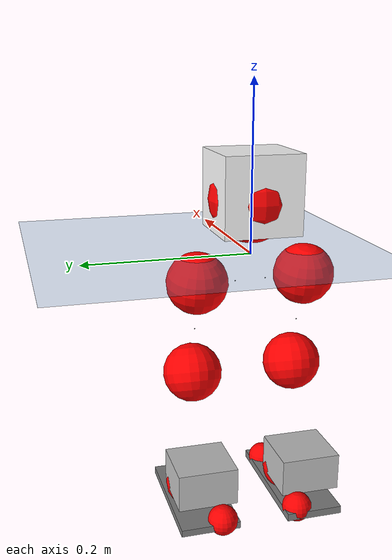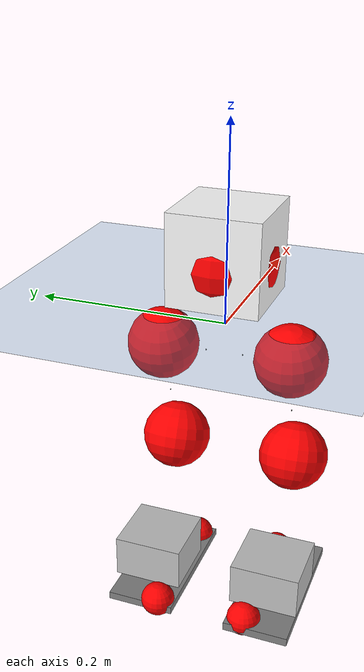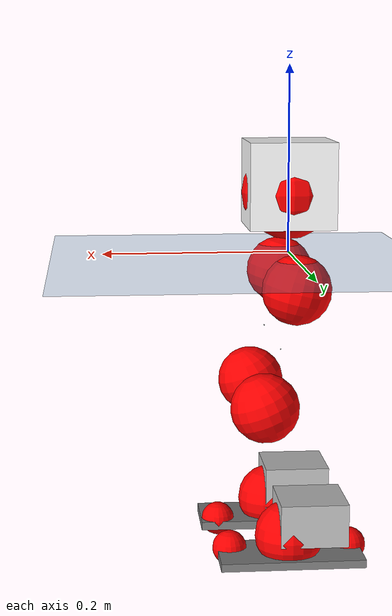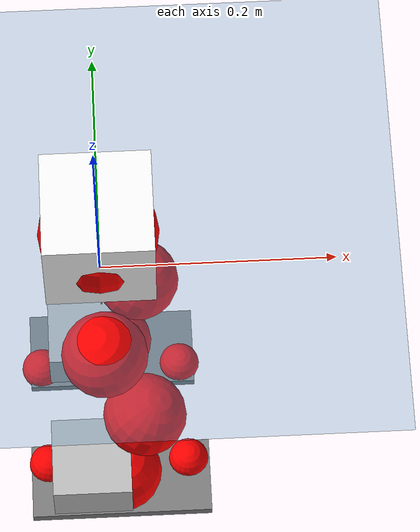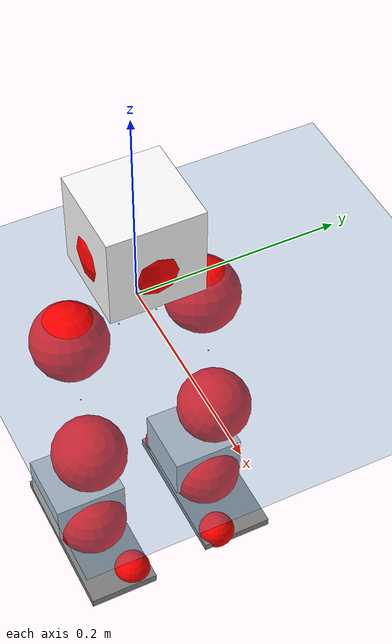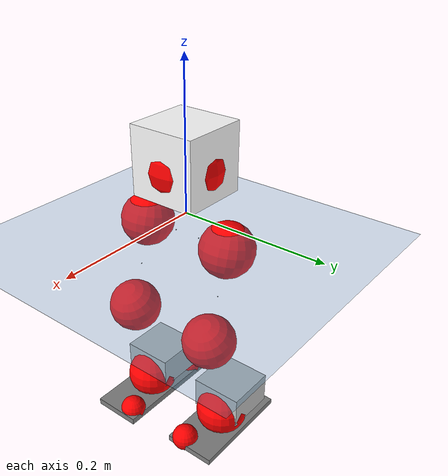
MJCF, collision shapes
<mujoco model="pi_12dof_release_v1">
  <compiler angle="radian" assetdir="assets" balanceinertia="true" inertiafromgeom="false"/>

  <option timestep="0.005" density="1.2" viscosity="2e-05"/>

  <size nkey="1"/>

  <visual>
    <quality shadowsize="8192"/>
    <map shadowclip="0.5"/>
  </visual>

  <default>
    <default class="/">
      <joint armature="0.01" damping="0.01" frictionloss="0.01"/>
      <geom contype="0" conaffinity="0" group="1" solref="-1000 -80"/>
      <site size="0.01 0.005 0.005" group="5"/>
      <general forcelimited="true" biastype="affine" gainprm="20" biasprm="0 -20 -0.5"/>
      <default class="foot">
        <geom size="0.0845 0.036 0.005" type="box" condim="6" group="4" priority="1" friction="0.9 0.2 0.2" solimp="0.015 1 0.005"/>
      </default>
      <default class="reward_collision_sphere">
        <geom group="5" rgba="1 0 0 1"/>
      </default>
    </default>
  </default>

  <asset>
    <texture type="skybox" colorspace="auto" name="//unnamed_texture_0" builtin="gradient" rgb1="0.95 0.95 0.95" rgb2="0.95 0.95 0.95" width="100" height="600"/>
    <texture type="2d" colorspace="auto" name="texplane" builtin="checker" rgb1="0.345 0.575 0.748" rgb2="0.345 0.575 0.748" markrgb="1 1 1" width="512" height="512"/>
    <material name="MatPlane" class="/" texture="texplane" texuniform="true" texrepeat="2 2" specular="0.9"/>
    <mesh name="baselink_1" class="/" file="baselink_1.STL"/>
    <mesh name="r_hip_pitch_link" class="/" file="r_hip_pitch_link.STL"/>
    <mesh name="r_hip_roll_link" class="/" file="r_hip_roll_link.STL"/>
    <mesh name="r_thigh_link" class="/" file="r_thigh_link.STL"/>
    <mesh name="r_calf_link" class="/" file="r_calf_link.STL"/>
    <mesh name="r_ankle_pitch_link" class="/" file="r_ankle_pitch_link.STL"/>
    <mesh name="r_ankle_roll_link" class="/" file="r_ankle_roll_link.STL"/>
    <mesh name="l_hip_pitch_link" class="/" file="l_hip_pitch_link.STL"/>
    <mesh name="l_hip_roll_link" class="/" file="l_hip_roll_link.STL"/>
    <mesh name="l_thigh_link" class="/" file="l_thigh_link.STL"/>
    <mesh name="l_calf_link" class="/" file="l_calf_link.STL"/>
    <mesh name="l_ankle_pitch_link" class="/" file="l_ankle_pitch_link.STL"/>
    <mesh name="l_ankle_roll_link" class="/" file="l_ankle_roll_link.STL"/>
  </asset>

  <worldbody>
    <geom name="floor" class="/" size="100 100 0.125" type="plane" group="0" material="MatPlane"/>
    <light name="toplight_shadow" class="/" pos="0 0 5" dir="0.0990148 0.0990148 -0.990148" type="directional" ambient="0.04 0.04 0.04" diffuse="0.55 0.55 0.55" specular="0.12 0.12 0.12"/>
    <light name="toplight_fill" class="/" pos="0 0 5" dir="0.0990148 0.0990148 -0.990148" type="directional" castshadow="false" ambient="0.04 0.04 0.04" diffuse="0.3 0.3 0.3" specular="0.08 0.08 0.08"/>
    <body name="trunk" pos="0.000510488 -2.01027e-05 -0.000156554" quat="1 7.12702e-05 -0.000187713 -0.000179432">
      <inertial pos="0.00146108 -0.00234776 0.0366025" quat="0.692512 0.0112622 0.0118236 0.721221" mass="1.66045" diaginertia="0.00797667 0.0044679 0.00295321"/>
      <joint name="//unnamed_joint_0" type="free"/>
      <geom name="//unnamed_geom_1" class="/" type="mesh" density="0" rgba="1 1 1 1" mesh="baselink_1"/>
      <geom name="//unnamed_geom_2" class="/" size="0.0459404 0.0459404 0.0459404" pos="0 0 0.0745345" type="box" rgba="1 1 1 1"/>
      <geom name="//unnamed_geom_3" class="reward_collision_sphere" size="0.0505344" pos="0 0 0.0652177"/>
      <site name="imu" class="/" pos="-0.0105538 -0.00215378 0.0069715" size="0.00918808"/>
      <camera name="track" class="/" pos="0 -1.73166 0" quat="0.707107 0.707107 0 0" mode="trackcom"/>
      <camera name="ego_camera" class="/" pos="0.0719182 0 0.167703" quat="-0.5 -0.5 0.5 0.5"/>
      <body name="r_hip_pitch_link" pos="-0.000647859 -0.0189544 -0.0304776" quat="0.992209 -0.000110221 -0.124585 4.08324e-05">
        <inertial pos="0.00256641 -0.0479092 -1.22901e-05" quat="-0.019049 0.706559 -0.0263693 0.706906" mass="0.281456" diaginertia="8.61504e-05 4.79051e-05 5.77052e-05"/>
        <joint name="r_hip_pitch_joint" class="/" pos="0 0 0" axis="-0.000533678 -0.999979 -0.00653475" stiffness="0.00664504" range="-1.74626 1.21414" armature="0.00957969" damping="0.00021572" frictionloss="0.00963008"/>
        <geom name="//unnamed_geom_4" class="/" type="mesh" density="0" rgba="0.75294 0.75294 0.75294 1" mesh="r_hip_pitch_link"/>
        <geom name="//unnamed_geom_5" class="/" size="0.000459404 0.000459404 0.000459404" type="box" rgba="0.75294 0.75294 0.75294 1"/>
        <body name="r_hip_roll_link" pos="0.00150301 -0.0489501 0.00127123" quat="1 4.4955e-05 -6.75321e-05 -2.43719e-07">
          <inertial pos="-0.00212 -9.42107e-05 -0.0559315" quat="0.704648 -0.0785081 -0.0854317 0.700007" mass="0.301311" diaginertia="0.000266543 0.00013578 9.0366e-05"/>
          <joint name="r_hip_roll_joint" class="/" pos="0 0 0" axis="-0.999949 0.00632285 0.00781374" stiffness="0.000595536" range="-0.150528 0.478778" armature="0.00968636" damping="0.00651524" frictionloss="0.00937981"/>
          <geom name="//unnamed_geom_6" class="/" type="mesh" density="0" rgba="0.75294 0.75294 0.75294 1" mesh="r_hip_roll_link"/>
          <geom name="//unnamed_geom_7" class="/" size="0.000459404 0.000459404 0.000459404" type="box" rgba="0.75294 0.75294 0.75294 1"/>
          <geom name="//unnamed_geom_8" class="reward_collision_sphere" size="0.0367523"/>
          <body name="r_thigh_link" pos="0.000356816 -0.000127043 -0.066144" quat="1 0.00034194 -0.000114682 -0.000354327">
            <inertial pos="0.000369723 0.000642728 -0.0437686" quat="0.735795 0.677202 0.00163581 -0.000130631" mass="0.0881774" diaginertia="0.000102039 4.59268e-05 4.11096e-05"/>
            <joint name="r_thigh_joint" class="/" pos="0 0 0" axis="0.000781438 -0.00204975 -0.999998" range="-0.321128 0.58008" armature="0.00904162" damping="0.00273954" frictionloss="0.00930765"/>
            <geom name="//unnamed_geom_9" class="/" type="mesh" density="0" rgba="0.75294 0.75294 0.75294 1" mesh="r_thigh_link"/>
            <geom name="//unnamed_geom_10" class="/" size="0.000459404 0.000459404 0.000459404" type="box" rgba="0.75294 0.75294 0.75294 1"/>
            <body name="r_calf_link" pos="-0.00064633 -0.00177209 -0.0644132" quat="0.947658 -3.33065e-05 0.319287 -4.02214e-05">
              <inertial pos="0.000911207 -0.000747276 -0.0649389" quat="0.999982 -0.00403598 0.0011677 0.00420612" mass="0.632828" diaginertia="0.00287957 0.00168537 0.000121903"/>
              <joint name="r_calf_joint" class="/" pos="0 0 0" axis="-0.00158217 -0.999996 -0.00221444" stiffness="0.0003034" range="-1.66134 0.6352" armature="0.00919003" damping="0.00755487" frictionloss="0.00957683"/>
              <geom name="//unnamed_geom_11" class="/" type="mesh" density="0" rgba="0.75294 0.75294 0.75294 1" mesh="r_calf_link"/>
              <geom name="//unnamed_geom_12" class="/" size="0.000459404 0.000459404 0.000459404" type="box" rgba="0.75294 0.75294 0.75294 1"/>
              <geom name="//unnamed_geom_13" class="reward_collision_sphere" size="0.0367523"/>
              <body name="r_ankle_pitch_link" pos="0.000732859 0.0028453 -0.130139" quat="0.980064 2.44557e-06 -0.198682 -2.04372e-05">
                <inertial pos="0.00461683 0.00338571 -0.000858538" quat="-0.00162521 0.703586 -0.00255855 0.710603" mass="0.132378" diaginertia="0.00024917 0.000106829 8.25083e-05"/>
                <joint name="r_ankle_pitch_joint" class="/" pos="0 0 0" axis="-0.00511809 -0.999986 -0.00136875" range="-1.28714 0.499462" armature="0.00918569" damping="0" frictionloss="0.0091939"/>
                <geom name="//unnamed_geom_14" class="/" type="mesh" density="0" rgba="0.75294 0.75294 0.75294 1" mesh="r_ankle_pitch_link"/>
                <geom name="//unnamed_geom_15" class="/" size="0.0358335 0.0367523 0.0229702" type="box" rgba="0.75294 0.75294 0.75294 1"/>
                <body name="r_ankle_roll_link" pos="0.0748755 0.00162183 -0.000481934" quat="1 1.13423e-05 -2.46239e-05 3.83763e-05">
                  <inertial pos="-0.0232128 0.000335498 -0.0119372" quat="0.561033 0.431822 0.432394 0.558397" mass="0.401398" diaginertia="0.000895901 0.000497485 0.000199711"/>
                  <joint name="r_ankle_roll_joint" class="/" pos="0 0 0" axis="-0.999996 0.000957117 0.00277653" range="-0.152592 0.130213" armature="0.00862909" damping="0" frictionloss="0.00975643"/>
                  <geom name="//unnamed_geom_16" class="/" type="mesh" density="0" rgba="0.75294 0.75294 0.75294 1" mesh="r_ankle_roll_link"/>
                  <geom name="//unnamed_geom_17" class="/" type="mesh" rgba="0.75294 0.75294 0.75294 1" mesh="r_ankle_roll_link"/>
                  <geom name="right_foot" class="foot" size="0.0825706 0.0349589 0.00466123" pos="-0.0489044 0 -0.040994"/>
                  <geom name="//unnamed_geom_19" class="reward_collision_sphere" size="0.0367523" pos="-0.0479455 0 -0.0186336"/>
                  <geom name="//unnamed_geom_20" class="reward_collision_sphere" size="0.0183762" pos="0.0143836 0.0173166 -0.0372673"/>
                  <geom name="//unnamed_geom_21" class="reward_collision_sphere" size="0.0183762" pos="-0.115069 0.0173166 -0.0372673"/>
                  <site name="right_foot" class="foot" pos="-0.0489044 0 -0.040994" size="0.00918808"/>
                </body>
              </body>
            </body>
          </body>
        </body>
      </body>
      <body name="l_hip_pitch_link" pos="-0.0017822 0.0189822 -0.0305085" quat="0.992221 5.34774e-05 -0.124486 0.000104055">
        <inertial pos="-9.25582e-05 0.0479348 -0.000190257" quat="-0.037188 0.706219 0.0289892 0.706421" mass="0.299716" diaginertia="0.000103759 5.16447e-05 6.84572e-05"/>
        <joint name="l_hip_pitch_joint" class="/" pos="0 0 0" axis="0.000451247 1 -0.000501013" stiffness="0.00245187" range="-1.2761 1.74926" armature="0.0100632" damping="0.00115494" frictionloss="0.00914433"/>
        <geom name="//unnamed_geom_22" class="/" type="mesh" density="0" rgba="0.75294 0.75294 0.75294 1" mesh="l_hip_pitch_link"/>
        <geom name="//unnamed_geom_23" class="/" size="0.000459404 0.000459404 0.000459404" type="box" rgba="0.75294 0.75294 0.75294 1"/>
        <body name="l_hip_roll_link" pos="0.000851916 0.046288 -7.85148e-05" quat="1 -5.12505e-05 2.82876e-05 0.000155254">
          <inertial pos="-0.00105256 0.000768722 -0.0570491" quat="0.699182 -0.0730751 -0.0786352 0.706839" mass="0.301148" diaginertia="0.000270006 0.000135533 8.91973e-05"/>
          <joint name="l_hip_roll_joint" class="/" pos="0 0 0" axis="-0.999934 -0.0105191 -0.00461623" range="-0.459084 0.110728" armature="0.00930819" damping="0.0106177" frictionloss="0.0085478"/>
          <geom name="//unnamed_geom_24" class="/" type="mesh" density="0" rgba="0.75294 0.75294 0.75294 1" mesh="l_hip_roll_link"/>
          <geom name="//unnamed_geom_25" class="/" size="0.000459404 0.000459404 0.000459404" type="box" rgba="0.75294 0.75294 0.75294 1"/>
          <geom name="//unnamed_geom_26" class="reward_collision_sphere" size="0.0367523"/>
          <body name="l_thigh_link" pos="0.000478083 -0.00115324 -0.0644716" quat="1 9.90185e-05 0.000206462 -0.000460085">
            <inertial pos="0.000531534 -0.00125558 -0.0449694" quat="0.68153 0.731748 0.00648088 0.00430099" mass="0.0875224" diaginertia="0.000101843 4.64055e-05 3.96151e-05"/>
            <joint name="l_thigh_joint" class="/" pos="0 0 0" axis="-0.00593044 0.00098762 -0.999982" range="-0.594086 0.289238" armature="0.0087978" damping="0" frictionloss="0.00908432"/>
            <geom name="//unnamed_geom_27" class="/" type="mesh" density="0" rgba="0.75294 0.75294 0.75294 1" mesh="l_thigh_link"/>
            <geom name="//unnamed_geom_28" class="/" size="0.000459404 0.000459404 0.000459404" type="box" rgba="0.75294 0.75294 0.75294 1"/>
            <body name="l_calf_link" pos="-0.000347162 -0.00114624 -0.0655473" quat="0.947701 0.000275825 0.31916 0.000268194">
              <inertial pos="-0.00143289 0.00305511 -0.0644879" quat="0.999971 0.00343109 0.00279816 0.00614919" mass="0.637602" diaginertia="0.00288561 0.001719 0.000120745"/>
              <joint name="l_calf_joint" class="/" pos="0 0 0" axis="-0.00303231 0.999994 0.0016631" stiffness="0.000958939" range="-0.669346 1.6069" armature="0.00859573" damping="0.00592347" frictionloss="0.00852341"/>
              <geom name="//unnamed_geom_29" class="/" type="mesh" density="0" rgba="0.75294 0.75294 0.75294 1" mesh="l_calf_link"/>
              <geom name="//unnamed_geom_30" class="/" size="0.000459404 0.000459404 0.000459404" type="box" rgba="0.75294 0.75294 0.75294 1"/>
              <geom name="//unnamed_geom_31" class="reward_collision_sphere" size="0.0367523"/>
              <body name="l_ankle_pitch_link" pos="0.00140802 0.00205504 -0.128845" quat="0.98007 -0.000118622 -0.198655 4.36097e-06">
                <inertial pos="0.0050849 -0.000242697 0.000203336" quat="-0.00225283 0.707151 0.00208472 0.707056" mass="0.129347" diaginertia="0.000238868 0.000104739 8.15229e-05"/>
                <joint name="l_ankle_pitch_joint" class="/" pos="0 0 0" axis="-0.00169496 0.999997 -0.00185927" stiffness="0.00036555" range="-0.499787 1.29589" armature="0.00921622" damping="0" frictionloss="0.0102502"/>
                <geom name="//unnamed_geom_32" class="/" type="mesh" density="0" rgba="0.75294 0.75294 0.75294 1" mesh="l_ankle_pitch_link"/>
                <geom name="//unnamed_geom_33" class="/" size="0.0358335 0.0367523 0.0229702" type="box" rgba="0.75294 0.75294 0.75294 1"/>
                <body name="l_ankle_roll_link" pos="0.0707715 0.00177089 -0.000447881" quat="1 2.48588e-05 0.000157969 0.0003957">
                  <inertial pos="-0.022484 -0.000264285 -0.013583" quat="0.561207 0.433241 0.435667 0.554566" mass="0.407198" diaginertia="0.00092927 0.000510907 0.000199795"/>
                  <joint name="l_ankle_roll_joint" class="/" pos="0 0 0" axis="-0.999996 -0.00159502 -0.00227341" range="-0.153953 0.154133" armature="0.00959272" damping="0.00962289" frictionloss="0.008295"/>
                  <geom name="//unnamed_geom_34" class="/" type="mesh" density="0" rgba="0.75294 0.75294 0.75294 1" mesh="l_ankle_roll_link"/>
                  <geom name="//unnamed_geom_35" class="/" type="mesh" rgba="0.75294 0.75294 0.75294 1" mesh="l_ankle_roll_link"/>
                  <geom name="left_foot" class="foot" size="0.0765292 0.0364838 0.00423417" pos="-0.0489044 0 -0.040994"/>
                  <geom name="//unnamed_geom_37" class="reward_collision_sphere" size="0.0367523" pos="-0.0479455 0 -0.0186336"/>
                  <geom name="//unnamed_geom_38" class="reward_collision_sphere" size="0.0183762" pos="0.0143836 -0.0173166 -0.0372673"/>
                  <geom name="//unnamed_geom_39" class="reward_collision_sphere" size="0.0183762" pos="-0.115069 -0.0173166 -0.0372673"/>
                  <site name="left_foot" class="foot" pos="-0.0489044 0 -0.040994" size="0.00918808"/>
                </body>
              </body>
            </body>
          </body>
        </body>
      </body>
    </body>
  </worldbody>

  <contact>
    <pair class="/" geom1="floor" geom2="right_foot" name="//unnamed_contact_1"/>
    <pair class="/" geom1="floor" geom2="left_foot" name="//unnamed_contact_0"/>
  </contact>

  <actuator>
    <general name="r_hip_pitch_joint" class="/" joint="r_hip_pitch_joint" forcerange="-18.6071 18.6071" gainprm="18.2724" biasprm="0 -18.2724 -0.480689"/>
    <general name="r_hip_roll_joint" class="/" joint="r_hip_roll_joint" forcerange="-18.5498 18.5498" gainprm="18.2724" biasprm="0 -18.2724 -0.480689"/>
    <general name="r_thigh_joint" class="/" joint="r_thigh_joint" forcerange="-19.7356 19.7356" gainprm="18.2724" biasprm="0 -18.2724 -0.480689"/>
    <general name="r_calf_joint" class="/" joint="r_calf_joint" forcerange="-19.5124 19.5124" gainprm="18.2724" biasprm="0 -18.2724 -0.480689"/>
    <general name="r_ankle_pitch_joint" class="/" joint="r_ankle_pitch_joint" forcerange="-18.5524 18.5524" gainprm="18.2724" biasprm="0 -18.2724 -0.480689"/>
    <general name="r_ankle_roll_joint" class="/" joint="r_ankle_roll_joint" forcerange="-19.3309 19.3309" gainprm="18.2724" biasprm="0 -18.2724 -0.480689"/>
    <general name="l_hip_pitch_joint" class="/" joint="l_hip_pitch_joint" forcerange="-19.0624 19.0624" gainprm="18.2724" biasprm="0 -18.2724 -0.480689"/>
    <general name="l_hip_roll_joint" class="/" joint="l_hip_roll_joint" forcerange="-19.7105 19.7105" gainprm="18.2724" biasprm="0 -18.2724 -0.480689"/>
    <general name="l_thigh_joint" class="/" joint="l_thigh_joint" forcerange="-19.6282 19.6282" gainprm="18.2724" biasprm="0 -18.2724 -0.480689"/>
    <general name="l_calf_joint" class="/" joint="l_calf_joint" forcerange="-19.5008 19.5008" gainprm="18.2724" biasprm="0 -18.2724 -0.480689"/>
    <general name="l_ankle_pitch_joint" class="/" joint="l_ankle_pitch_joint" forcerange="-18.596 18.596" gainprm="18.2724" biasprm="0 -18.2724 -0.480689"/>
    <general name="l_ankle_roll_joint" class="/" joint="l_ankle_roll_joint" forcerange="-18.3196 18.3196" gainprm="18.2724" biasprm="0 -18.2724 -0.480689"/>
  </actuator>

  <sensor>
    <gyro site="imu" name="imu_angular_velocity"/>
    <velocimeter site="imu" name="imu_linear_velocity"/>
    <framelinvel objtype="site" objname="left_foot" name="left_foot_global_linear_velocity"/>
    <framelinvel objtype="site" objname="right_foot" name="right_foot_global_linear_velocity"/>
  </sensor>

  <keyframe>
    <key name="home" qpos="0 0 0.291 1 0 0 0 0.4 0 0 -0.8 0.4 0 -0.4 0 0 0.8 -0.4 0"/>
  </keyframe>
</mujoco>
